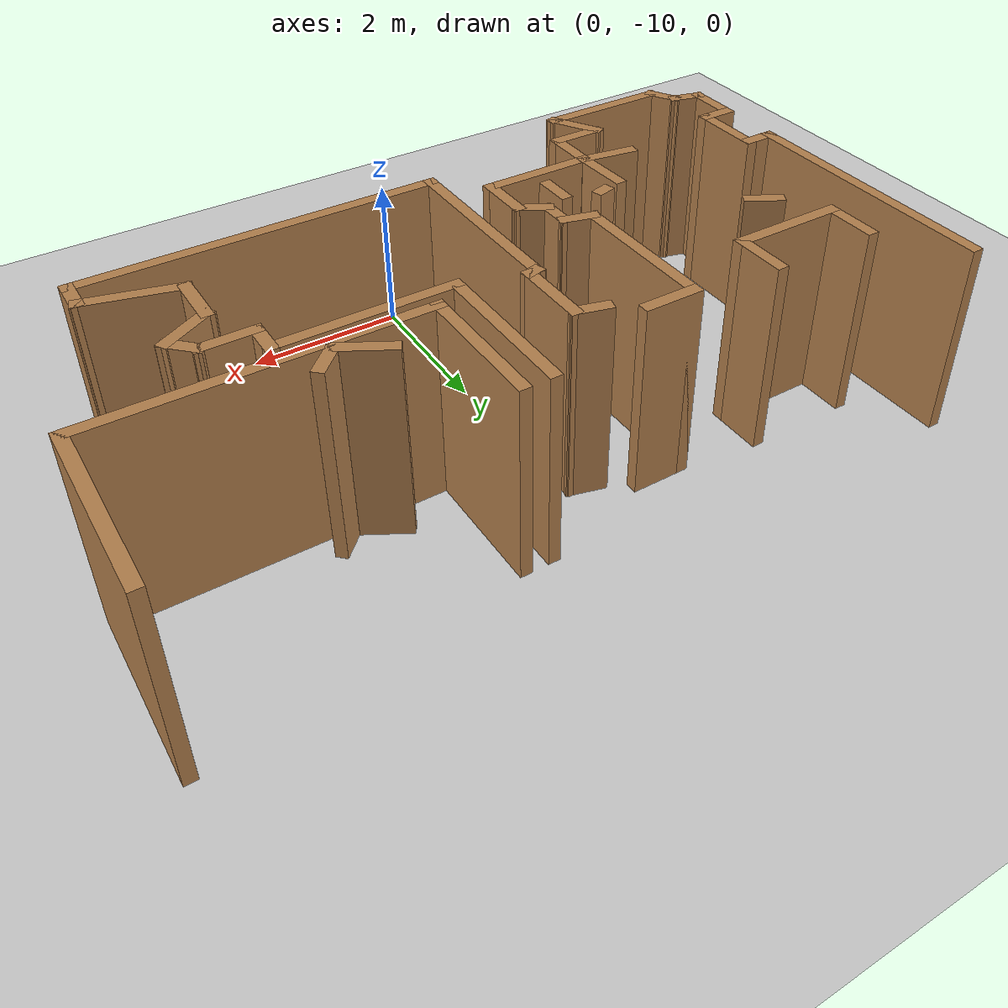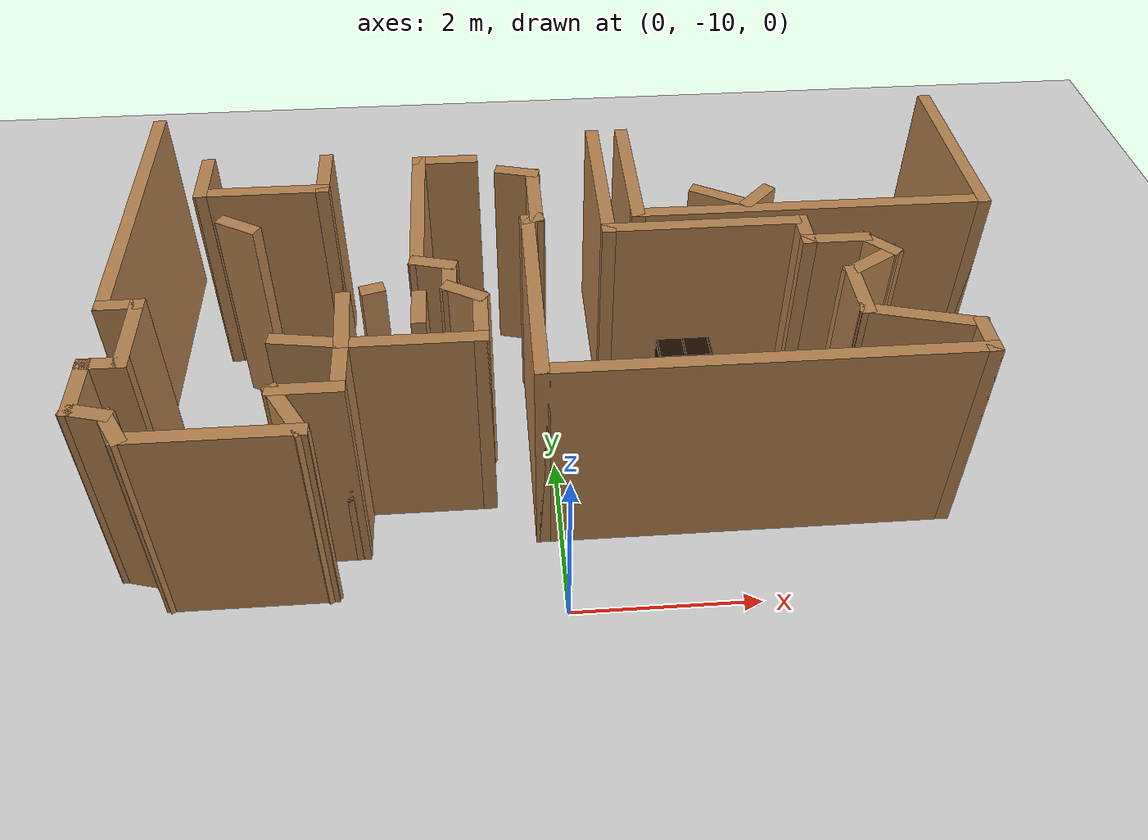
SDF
<sdf version="1.6">
 <world name="default">
  <model name="ground_plane">
   <static>1</static>
   <link name="link">
    <collision name="collision">
     <geometry><plane><normal>0 0 1</normal><size>100 100</size></plane></geometry>
     <surface>
      <contact><collide_bitmask>65535</collide_bitmask></contact>
      <friction><ode><mu>100</mu><mu2>50</mu2></ode></friction>
     </surface>
    </collision>
    <visual name="visual">
     <cast_shadows>0</cast_shadows>
     <geometry><plane><normal>0 0 1</normal><size>100 100</size></plane></geometry>
     <material>
      <script><uri>file://media/materials/scripts/gazebo.material</uri><name>Gazebo/Grey</name></script>
     </material>
    </visual>
   </link>
  </model>
  <model name="map_31">
   <pose>0.094706 -0.239588 0 0 -0 0</pose>
   <link name="Wall_148">
    <collision name="Wall_148_Collision">
     <geometry><box><size>0.796706 0.15 2.5</size></box></geometry>
     <pose>0 0 1.25 0 -0 0</pose>
    </collision>
    <visual name="Wall_148_Visual">
     <pose>0 0 1.25 0 -0 0</pose>
     <geometry><box><size>0.796706 0.15 2.5</size></box></geometry>
     <material>
      <script><uri>file://media/materials/scripts/gazebo.material</uri><name>Gazebo/Wood</name></script>
      <ambient>1 1 1 1</ambient>
     </material>
     <meta><layer>0</layer></meta>
    </visual>
    <pose>-2.51001 -8.20815 0 0 -0 -0.158782</pose>
   </link>
   <link name="Wall_150">
    <collision name="Wall_150_Collision">
     <geometry><box><size>0.833993 0.15 2.5</size></box></geometry>
     <pose>0 0 1.25 0 -0 0</pose>
    </collision>
    <visual name="Wall_150_Visual">
     <pose>0 0 1.25 0 -0 0</pose>
     <geometry><box><size>0.833993 0.15 2.5</size></box></geometry>
     <material>
      <script><uri>file://media/materials/scripts/gazebo.material</uri><name>Gazebo/Wood</name></script>
      <ambient>1 1 1 1</ambient>
     </material>
     <meta><layer>0</layer></meta>
    </visual>
    <pose>-2.20411 -7.91754 0 0 -0 -1.53165</pose>
   </link>
   <link name="Wall_152">
    <collision name="Wall_152_Collision">
     <geometry><box><size>0.5 0.15 2.5</size></box></geometry>
     <pose>0 0 1.25 0 -0 0</pose>
    </collision>
    <visual name="Wall_152_Visual">
     <pose>0 0 1.25 0 -0 0</pose>
     <geometry><box><size>0.5 0.15 2.5</size></box></geometry>
     <material>
      <script><uri>file://media/materials/scripts/gazebo.material</uri><name>Gazebo/Wood</name></script>
      <ambient>1 1 1 1</ambient>
     </material>
     <meta><layer>0</layer></meta>
    </visual>
    <pose>-1.45274 -7.7814 0 0 -0 -1.5708</pose>
   </link>
   <link name="Wall_154">
    <collision name="Wall_154_Collision">
     <geometry><box><size>0.25 0.15 2.5</size></box></geometry>
     <pose>0 0 1.25 0 -0 0</pose>
    </collision>
    <visual name="Wall_154_Visual">
     <pose>0 0 1.25 0 -0 0</pose>
     <geometry><box><size>0.25 0.15 2.5</size></box></geometry>
     <material>
      <script><uri>file://media/materials/scripts/gazebo.material</uri><name>Gazebo/Wood</name></script>
      <ambient>1 1 1 1</ambient>
     </material>
     <meta><layer>0</layer></meta>
    </visual>
    <pose>-1.92447 -7.4711 0 0 -0 0.261799</pose>
   </link>
   <link name="Wall_156">
    <collision name="Wall_156_Collision">
     <geometry><box><size>0.5 0.15 2.5</size></box></geometry>
     <pose>0 0 1.25 0 -0 0</pose>
    </collision>
    <visual name="Wall_156_Visual">
     <pose>0 0 1.25 0 -0 0</pose>
     <geometry><box><size>0.5 0.15 2.5</size></box></geometry>
     <material>
      <script><uri>file://media/materials/scripts/gazebo.material</uri><name>Gazebo/Wood</name></script>
      <ambient>1 1 1 1</ambient>
     </material>
     <meta><layer>0</layer></meta>
    </visual>
    <pose>-3.41191 -6.28675 0 0 -0 -0.523599</pose>
   </link>
   <link name="Wall_158">
    <collision name="Wall_158_Collision">
     <geometry><box><size>0.75 0.15 2.5</size></box></geometry>
     <pose>0 0 1.25 0 -0 0</pose>
    </collision>
    <visual name="Wall_158_Visual">
     <pose>0 0 1.25 0 -0 0</pose>
     <geometry><box><size>0.75 0.15 2.5</size></box></geometry>
     <material>
      <script><uri>file://media/materials/scripts/gazebo.material</uri><name>Gazebo/Wood</name></script>
      <ambient>1 1 1 1</ambient>
     </material>
     <meta><layer>0</layer></meta>
    </visual>
    <pose>-3.89995 -5.36741 0 0 -0 -1.5708</pose>
   </link>
   <link name="Wall_159">
    <collision name="Wall_159_Collision">
     <geometry><box><size>1.5 0.15 2.5</size></box></geometry>
     <pose>0 0 1.25 0 -0 0</pose>
    </collision>
    <visual name="Wall_159_Visual">
     <pose>0 0 1.25 0 -0 0</pose>
     <geometry><box><size>1.5 0.15 2.5</size></box></geometry>
     <material>
      <script><uri>file://media/materials/scripts/gazebo.material</uri><name>Gazebo/Wood</name></script>
      <ambient>1 1 1 1</ambient>
     </material>
     <meta><layer>0</layer></meta>
    </visual>
    <pose>-3.22495 -5.66741 0 0 -0 0</pose>
   </link>
   <link name="Wall_160">
    <collision name="Wall_160_Collision">
     <geometry><box><size>0.75 0.15 2.5</size></box></geometry>
     <pose>0 0 1.25 0 -0 0</pose>
    </collision>
    <visual name="Wall_160_Visual">
     <pose>0 0 1.25 0 -0 0</pose>
     <geometry><box><size>0.75 0.15 2.5</size></box></geometry>
     <material>
      <script><uri>file://media/materials/scripts/gazebo.material</uri><name>Gazebo/Wood</name></script>
      <ambient>1 1 1 1</ambient>
     </material>
     <meta><layer>0</layer></meta>
    </visual>
    <pose>-2.54996 -5.36741 0 0 -0 1.5708</pose>
   </link>
   <link name="Wall_165">
    <collision name="Wall_165_Collision">
     <geometry><box><size>0.75 0.15 2.5</size></box></geometry>
     <pose>0 0 1.25 0 -0 0</pose>
    </collision>
    <visual name="Wall_165_Visual">
     <pose>0 0 1.25 0 -0 0</pose>
     <geometry><box><size>0.75 0.15 2.5</size></box></geometry>
     <material>
      <script><uri>file://media/materials/scripts/gazebo.material</uri><name>Gazebo/Wood</name></script>
      <ambient>1 1 1 1</ambient>
     </material>
     <meta><layer>0</layer></meta>
    </visual>
    <pose>1.89668 -6.13512 0 0 -0 -0.523599</pose>
   </link>
   <link name="Wall_166">
    <collision name="Wall_166_Collision">
     <geometry><box><size>0.5 0.15 2.5</size></box></geometry>
     <pose>0 0 1.25 0 -0 0</pose>
    </collision>
    <visual name="Wall_166_Visual">
     <pose>0 0 1.25 0 -0 0</pose>
     <geometry><box><size>0.5 0.15 2.5</size></box></geometry>
     <material>
      <script><uri>file://media/materials/scripts/gazebo.material</uri><name>Gazebo/Wood</name></script>
      <ambient>1 1 1 1</ambient>
     </material>
     <meta><layer>0</layer></meta>
    </visual>
    <pose>2.28024 -6.16137 0 0 -0 0.785398</pose>
   </link>
   <link name="Wall_35">
    <collision name="Wall_35_Collision">
     <geometry><box><size>3.5 0.15 2.5</size></box></geometry>
     <pose>0 0 1.25 0 -0 0</pose>
    </collision>
    <visual name="Wall_35_Visual">
     <pose>0 0 1.25 0 -0 0</pose>
     <geometry><box><size>3.5 0.15 2.5</size></box></geometry>
     <material>
      <script><uri>file://media/materials/scripts/gazebo.material</uri><name>Gazebo/Wood</name></script>
      <ambient>1 1 1 1</ambient>
     </material>
     <meta><layer>0</layer></meta>
    </visual>
    <pose>-4.6038 -5.8602 0 0 -0 -1.5708</pose>
   </link>
   <link name="Wall_36">
    <collision name="Wall_36_Collision">
     <geometry><box><size>0.5 0.15 2.5</size></box></geometry>
     <pose>0 0 1.25 0 -0 0</pose>
    </collision>
    <visual name="Wall_36_Visual">
     <pose>0 0 1.25 0 -0 0</pose>
     <geometry><box><size>0.5 0.15 2.5</size></box></geometry>
     <material>
      <script><uri>file://media/materials/scripts/gazebo.material</uri><name>Gazebo/Wood</name></script>
      <ambient>1 1 1 1</ambient>
     </material>
     <meta><layer>0</layer></meta>
    </visual>
    <pose>-4.4288 -7.5352 0 0 -0 0</pose>
   </link>
   <link name="Wall_37">
    <collision name="Wall_37_Collision">
     <geometry><box><size>1 0.15 2.5</size></box></geometry>
     <pose>0 0 1.25 0 -0 0</pose>
    </collision>
    <visual name="Wall_37_Visual">
     <pose>0 0 1.25 0 -0 0</pose>
     <geometry><box><size>1 0.15 2.5</size></box></geometry>
     <material>
      <script><uri>file://media/materials/scripts/gazebo.material</uri><name>Gazebo/Wood</name></script>
      <ambient>1 1 1 1</ambient>
     </material>
     <meta><layer>0</layer></meta>
    </visual>
    <pose>-4.2538 -7.9602 0 0 -0 -1.5708</pose>
   </link>
   <link name="Wall_38">
    <collision name="Wall_38_Collision">
     <geometry><box><size>0.5 0.15 2.5</size></box></geometry>
     <pose>0 0 1.25 0 -0 0</pose>
    </collision>
    <visual name="Wall_38_Visual">
     <pose>0 0 1.25 0 -0 0</pose>
     <geometry><box><size>0.5 0.15 2.5</size></box></geometry>
     <material>
      <script><uri>file://media/materials/scripts/gazebo.material</uri><name>Gazebo/Wood</name></script>
      <ambient>1 1 1 1</ambient>
     </material>
     <meta><layer>0</layer></meta>
    </visual>
    <pose>-4.4288 -8.3852 0 0 -0 3.14159</pose>
   </link>
   <link name="Wall_39">
    <collision name="Wall_39_Collision">
     <geometry><box><size>0.75 0.15 2.5</size></box></geometry>
     <pose>0 0 1.25 0 -0 0</pose>
    </collision>
    <visual name="Wall_39_Visual">
     <pose>0 0 1.25 0 -0 0</pose>
     <geometry><box><size>0.75 0.15 2.5</size></box></geometry>
     <material>
      <script><uri>file://media/materials/scripts/gazebo.material</uri><name>Gazebo/Wood</name></script>
      <ambient>1 1 1 1</ambient>
     </material>
     <meta><layer>0</layer></meta>
    </visual>
    <pose>-4.6038 -8.6852 0 0 -0 -1.5708</pose>
   </link>
   <link name="Wall_40">
    <collision name="Wall_40_Collision">
     <geometry><box><size>0.5 0.15 2.5</size></box></geometry>
     <pose>0 0 1.25 0 -0 0</pose>
    </collision>
    <visual name="Wall_40_Visual">
     <pose>0 0 1.25 0 -0 0</pose>
     <geometry><box><size>0.5 0.15 2.5</size></box></geometry>
     <material>
      <script><uri>file://media/materials/scripts/gazebo.material</uri><name>Gazebo/Wood</name></script>
      <ambient>1 1 1 1</ambient>
     </material>
     <meta><layer>0</layer></meta>
    </visual>
    <pose>-4.43476 -9.03049 0 0 -0 -0.261799</pose>
   </link>
   <link name="Wall_41">
    <collision name="Wall_41_Collision">
     <geometry><box><size>0.5 0.15 2.5</size></box></geometry>
     <pose>0 0 1.25 0 -0 0</pose>
    </collision>
    <visual name="Wall_41_Visual">
     <pose>0 0 1.25 0 -0 0</pose>
     <geometry><box><size>0.5 0.15 2.5</size></box></geometry>
     <material>
      <script><uri>file://media/materials/scripts/gazebo.material</uri><name>Gazebo/Wood</name></script>
      <ambient>1 1 1 1</ambient>
     </material>
     <meta><layer>0</layer></meta>
    </visual>
    <pose>-4.17823 -9.22734 0 0 -0 -1.0472</pose>
   </link>
   <link name="Wall_42">
    <collision name="Wall_42_Collision">
     <geometry><box><size>1.75 0.15 2.5</size></box></geometry>
     <pose>0 0 1.25 0 -0 0</pose>
    </collision>
    <visual name="Wall_42_Visual">
     <pose>0 0 1.25 0 -0 0</pose>
     <geometry><box><size>1.75 0.15 2.5</size></box></geometry>
     <material>
      <script><uri>file://media/materials/scripts/gazebo.material</uri><name>Gazebo/Wood</name></script>
      <ambient>1 1 1 1</ambient>
     </material>
     <meta><layer>0</layer></meta>
    </visual>
    <pose>-3.29073 -9.37889 0 0 -0 0</pose>
   </link>
   <link name="Wall_43">
    <collision name="Wall_43_Collision">
     <geometry><box><size>0.75 0.15 2.5</size></box></geometry>
     <pose>0 0 1.25 0 -0 0</pose>
    </collision>
    <visual name="Wall_43_Visual">
     <pose>0 0 1.25 0 -0 0</pose>
     <geometry><box><size>0.75 0.15 2.5</size></box></geometry>
     <material>
      <script><uri>file://media/materials/scripts/gazebo.material</uri><name>Gazebo/Wood</name></script>
      <ambient>1 1 1 1</ambient>
     </material>
     <meta><layer>0</layer></meta>
    </visual>
    <pose>-2.64073 -9.11908 0 0 -0 2.0944</pose>
   </link>
   <link name="Wall_44">
    <collision name="Wall_44_Collision">
     <geometry><box><size>0.75 0.15 2.5</size></box></geometry>
     <pose>0 0 1.25 0 -0 0</pose>
    </collision>
    <visual name="Wall_44_Visual">
     <pose>0 0 1.25 0 -0 0</pose>
     <geometry><box><size>0.75 0.15 2.5</size></box></geometry>
     <material>
      <script><uri>file://media/materials/scripts/gazebo.material</uri><name>Gazebo/Wood</name></script>
      <ambient>1 1 1 1</ambient>
     </material>
     <meta><layer>0</layer></meta>
    </visual>
    <pose>-2.49072 -8.85928 0 0 -0 0</pose>
   </link>
   <link name="Wall_45">
    <collision name="Wall_45_Collision">
     <geometry><box><size>0.75 0.15 2.5</size></box></geometry>
     <pose>0 0 1.25 0 -0 0</pose>
    </collision>
    <visual name="Wall_45_Visual">
     <pose>0 0 1.25 0 -0 0</pose>
     <geometry><box><size>0.75 0.15 2.5</size></box></geometry>
     <material>
      <script><uri>file://media/materials/scripts/gazebo.material</uri><name>Gazebo/Wood</name></script>
      <ambient>1 1 1 1</ambient>
     </material>
     <meta><layer>0</layer></meta>
    </visual>
    <pose>-2.19073 -8.55928 0 0 -0 1.5708</pose>
   </link>
   <link name="Wall_46">
    <collision name="Wall_46_Collision">
     <geometry><box><size>1.5 0.15 2.5</size></box></geometry>
     <pose>0 0 1.25 0 -0 0</pose>
    </collision>
    <visual name="Wall_46_Visual">
     <pose>0 0 1.25 0 -0 0</pose>
     <geometry><box><size>1.5 0.15 2.5</size></box></geometry>
     <material>
      <script><uri>file://media/materials/scripts/gazebo.material</uri><name>Gazebo/Wood</name></script>
      <ambient>1 1 1 1</ambient>
     </material>
     <meta><layer>0</layer></meta>
    </visual>
    <pose>-1.51572 -8.25928 0 0 -0 0</pose>
   </link>
   <link name="Wall_47">
    <collision name="Wall_47_Collision">
     <geometry><box><size>0.75 0.15 2.5</size></box></geometry>
     <pose>0 0 1.25 0 -0 0</pose>
    </collision>
    <visual name="Wall_47_Visual">
     <pose>0 0 1.25 0 -0 0</pose>
     <geometry><box><size>0.75 0.15 2.5</size></box></geometry>
     <material>
      <script><uri>file://media/materials/scripts/gazebo.material</uri><name>Gazebo/Wood</name></script>
      <ambient>1 1 1 1</ambient>
     </material>
     <meta><layer>0</layer></meta>
    </visual>
    <pose>-0.840725 -7.95928 0 0 -0 1.5708</pose>
   </link>
   <link name="Wall_48">
    <collision name="Wall_48_Collision">
     <geometry><box><size>0.5 0.15 2.5</size></box></geometry>
     <pose>0 0 1.25 0 -0 0</pose>
    </collision>
    <visual name="Wall_48_Visual">
     <pose>0 0 1.25 0 -0 0</pose>
     <geometry><box><size>0.5 0.15 2.5</size></box></geometry>
     <material>
      <script><uri>file://media/materials/scripts/gazebo.material</uri><name>Gazebo/Wood</name></script>
      <ambient>1 1 1 1</ambient>
     </material>
     <meta><layer>0</layer></meta>
    </visual>
    <pose>-0.99228 -7.57178 0 0 -0 2.61799</pose>
   </link>
   <link name="Wall_50">
    <collision name="Wall_50_Collision">
     <geometry><box><size>0.5 0.15 2.5</size></box></geometry>
     <pose>0 0 1.25 0 -0 0</pose>
    </collision>
    <visual name="Wall_50_Visual">
     <pose>0 0 1.25 0 -0 0</pose>
     <geometry><box><size>0.5 0.15 2.5</size></box></geometry>
     <material>
      <script><uri>file://media/materials/scripts/gazebo.material</uri><name>Gazebo/Wood</name></script>
      <ambient>1 1 1 1</ambient>
     </material>
     <meta><layer>0</layer></meta>
    </visual>
    <pose>-1.14383 -7.30928 0 0 -0 1.5708</pose>
   </link>
   <link name="Wall_51">
    <collision name="Wall_51_Collision">
     <geometry><box><size>0.5 0.15 2.5</size></box></geometry>
     <pose>0 0 1.25 0 -0 0</pose>
    </collision>
    <visual name="Wall_51_Visual">
     <pose>0 0 1.25 0 -0 0</pose>
     <geometry><box><size>0.5 0.15 2.5</size></box></geometry>
     <material>
      <script><uri>file://media/materials/scripts/gazebo.material</uri><name>Gazebo/Wood</name></script>
      <ambient>1 1 1 1</ambient>
     </material>
     <meta><layer>0</layer></meta>
    </visual>
    <pose>-1.31287 -7.08898 0 0 -0 2.87979</pose>
   </link>
   <link name="Wall_52">
    <collision name="Wall_52_Collision">
     <geometry><box><size>2 0.15 2.5</size></box></geometry>
     <pose>0 0 1.25 0 -0 0</pose>
    </collision>
    <visual name="Wall_52_Visual">
     <pose>0 0 1.25 0 -0 0</pose>
     <geometry><box><size>2 0.15 2.5</size></box></geometry>
     <material>
      <script><uri>file://media/materials/scripts/gazebo.material</uri><name>Gazebo/Wood</name></script>
      <ambient>1 1 1 1</ambient>
     </material>
     <meta><layer>0</layer></meta>
    </visual>
    <pose>-1.48191 -6.11869 0 0 -0 1.5708</pose>
   </link>
   <link name="Wall_53">
    <collision name="Wall_53_Collision">
     <geometry><box><size>0.75 0.15 2.5</size></box></geometry>
     <pose>0 0 1.25 0 -0 0</pose>
    </collision>
    <visual name="Wall_53_Visual">
     <pose>0 0 1.25 0 -0 0</pose>
     <geometry><box><size>0.75 0.15 2.5</size></box></geometry>
     <material>
      <script><uri>file://media/materials/scripts/gazebo.material</uri><name>Gazebo/Wood</name></script>
      <ambient>1 1 1 1</ambient>
     </material>
     <meta><layer>0</layer></meta>
    </visual>
    <pose>-1.18191 -5.19369 0 0 -0 0</pose>
   </link>
   <link name="Wall_57">
    <collision name="Wall_57_Collision">
     <geometry><box><size>0.5 0.15 2.5</size></box></geometry>
     <pose>0 0 1.25 0 -0 0</pose>
    </collision>
    <visual name="Wall_57_Visual">
     <pose>0 0 1.25 0 -0 0</pose>
     <geometry><box><size>0.5 0.15 2.5</size></box></geometry>
     <material>
      <script><uri>file://media/materials/scripts/gazebo.material</uri><name>Gazebo/Wood</name></script>
      <ambient>1 1 1 1</ambient>
     </material>
     <meta><layer>0</layer></meta>
    </visual>
    <pose>-0.362871 -5.48898 0 0 -0 -0.261799</pose>
   </link>
   <link name="Wall_58">
    <collision name="Wall_58_Collision">
     <geometry><box><size>1 0.15 2.5</size></box></geometry>
     <pose>0 0 1.25 0 -0 0</pose>
    </collision>
    <visual name="Wall_58_Visual">
     <pose>0 0 1.25 0 -0 0</pose>
     <geometry><box><size>1 0.15 2.5</size></box></geometry>
     <material>
      <script><uri>file://media/materials/scripts/gazebo.material</uri><name>Gazebo/Wood</name></script>
      <ambient>1 1 1 1</ambient>
     </material>
     <meta><layer>0</layer></meta>
    </visual>
    <pose>-0.193834 -5.95928 0 0 -0 -1.5708</pose>
   </link>
   <link name="Wall_59">
    <collision name="Wall_59_Collision">
     <geometry><box><size>0.25 0.15 2.5</size></box></geometry>
     <pose>0 0 1.25 0 -0 0</pose>
    </collision>
    <visual name="Wall_59_Visual">
     <pose>0 0 1.25 0 -0 0</pose>
     <geometry><box><size>0.25 0.15 2.5</size></box></geometry>
     <material>
      <script><uri>file://media/materials/scripts/gazebo.material</uri><name>Gazebo/Wood</name></script>
      <ambient>1 1 1 1</ambient>
     </material>
     <meta><layer>0</layer></meta>
    </visual>
    <pose>-0.242131 -6.39722 0 0 -0 -2.87979</pose>
   </link>
   <link name="Wall_60">
    <collision name="Wall_60_Collision">
     <geometry><box><size>2.5 0.15 2.5</size></box></geometry>
     <pose>0 0 1.25 0 -0 0</pose>
    </collision>
    <visual name="Wall_60_Visual">
     <pose>0 0 1.25 0 -0 0</pose>
     <geometry><box><size>2.5 0.15 2.5</size></box></geometry>
     <material>
      <script><uri>file://media/materials/scripts/gazebo.material</uri><name>Gazebo/Wood</name></script>
      <ambient>1 1 1 1</ambient>
     </material>
     <meta><layer>0</layer></meta>
    </visual>
    <pose>-0.290427 -7.58516 0 0 -0 -1.5708</pose>
   </link>
   <link name="Wall_61">
    <collision name="Wall_61_Collision">
     <geometry><box><size>4.5 0.15 2.5</size></box></geometry>
     <pose>0 0 1.25 0 -0 0</pose>
    </collision>
    <visual name="Wall_61_Visual">
     <pose>0 0 1.25 0 -0 0</pose>
     <geometry><box><size>4.5 0.15 2.5</size></box></geometry>
     <material>
      <script><uri>file://media/materials/scripts/gazebo.material</uri><name>Gazebo/Wood</name></script>
      <ambient>1 1 1 1</ambient>
     </material>
     <meta><layer>0</layer></meta>
    </visual>
    <pose>1.88457 -8.76016 0 0 -0 0</pose>
   </link>
   <link name="Wall_62">
    <collision name="Wall_62_Collision">
     <geometry><box><size>0.5 0.15 2.5</size></box></geometry>
     <pose>0 0 1.25 0 -0 0</pose>
    </collision>
    <visual name="Wall_62_Visual">
     <pose>0 0 1.25 0 -0 0</pose>
     <geometry><box><size>0.5 0.15 2.5</size></box></geometry>
     <material>
      <script><uri>file://media/materials/scripts/gazebo.material</uri><name>Gazebo/Wood</name></script>
      <ambient>1 1 1 1</ambient>
     </material>
     <meta><layer>0</layer></meta>
    </visual>
    <pose>4.05957 -8.58516 0 0 -0 1.5708</pose>
   </link>
   <link name="Wall_63">
    <collision name="Wall_63_Collision">
     <geometry><box><size>1.25 0.15 2.5</size></box></geometry>
     <pose>0 0 1.25 0 -0 0</pose>
    </collision>
    <visual name="Wall_63_Visual">
     <pose>0 0 1.25 0 -0 0</pose>
     <geometry><box><size>1.25 0.15 2.5</size></box></geometry>
     <material>
      <script><uri>file://media/materials/scripts/gazebo.material</uri><name>Gazebo/Wood</name></script>
      <ambient>1 1 1 1</ambient>
     </material>
     <meta><layer>0</layer></meta>
    </visual>
    <pose>3.52831 -8.26781 0 0 -0 2.87979</pose>
   </link>
   <link name="Wall_64">
    <collision name="Wall_64_Collision">
     <geometry><box><size>0.75 0.15 2.5</size></box></geometry>
     <pose>0 0 1.25 0 -0 0</pose>
    </collision>
    <visual name="Wall_64_Visual">
     <pose>0 0 1.25 0 -0 0</pose>
     <geometry><box><size>0.75 0.15 2.5</size></box></geometry>
     <material>
      <script><uri>file://media/materials/scripts/gazebo.material</uri><name>Gazebo/Wood</name></script>
      <ambient>1 1 1 1</ambient>
     </material>
     <meta><layer>0</layer></meta>
    </visual>
    <pose>2.99706 -7.82546 0 0 -0 1.5708</pose>
   </link>
   <link name="Wall_65">
    <collision name="Wall_65_Collision">
     <geometry><box><size>0.75 0.15 2.5</size></box></geometry>
     <pose>0 0 1.25 0 -0 0</pose>
    </collision>
    <visual name="Wall_65_Visual">
     <pose>0 0 1.25 0 -0 0</pose>
     <geometry><box><size>0.75 0.15 2.5</size></box></geometry>
     <material>
      <script><uri>file://media/materials/scripts/gazebo.material</uri><name>Gazebo/Wood</name></script>
      <ambient>1 1 1 1</ambient>
     </material>
     <meta><layer>0</layer></meta>
    </visual>
    <pose>3.25686 -7.37546 0 0 -0 0.523599</pose>
   </link>
   <link name="Wall_66">
    <collision name="Wall_66_Collision">
     <geometry><box><size>0.5 0.15 2.5</size></box></geometry>
     <pose>0 0 1.25 0 -0 0</pose>
    </collision>
    <visual name="Wall_66_Visual">
     <pose>0 0 1.25 0 -0 0</pose>
     <geometry><box><size>0.5 0.15 2.5</size></box></geometry>
     <material>
      <script><uri>file://media/materials/scripts/gazebo.material</uri><name>Gazebo/Wood</name></script>
      <ambient>1 1 1 1</ambient>
     </material>
     <meta><layer>0</layer></meta>
    </visual>
    <pose>3.39293 -7.10171 0 0 -0 2.35619</pose>
   </link>
   <link name="Wall_67">
    <collision name="Wall_67_Collision">
     <geometry><box><size>0.75 0.15 2.5</size></box></geometry>
     <pose>0 0 1.25 0 -0 0</pose>
    </collision>
    <visual name="Wall_67_Visual">
     <pose>0 0 1.25 0 -0 0</pose>
     <geometry><box><size>0.75 0.15 2.5</size></box></geometry>
     <material>
      <script><uri>file://media/materials/scripts/gazebo.material</uri><name>Gazebo/Wood</name></script>
      <ambient>1 1 1 1</ambient>
     </material>
     <meta><layer>0</layer></meta>
    </visual>
    <pose>2.96918 -6.97797 0 0 -0 3.14159</pose>
   </link>
   <link name="Wall_70">
    <collision name="Wall_70_Collision">
     <geometry><box><size>0.5 0.15 2.5</size></box></geometry>
     <pose>0 0 1.25 0 -0 0</pose>
    </collision>
    <visual name="Wall_70_Visual">
     <pose>0 0 1.25 0 -0 0</pose>
     <geometry><box><size>0.5 0.15 2.5</size></box></geometry>
     <material>
      <script><uri>file://media/materials/scripts/gazebo.material</uri><name>Gazebo/Wood</name></script>
      <ambient>1 1 1 1</ambient>
     </material>
     <meta><layer>0</layer></meta>
    </visual>
    <pose>2.66918 -6.80297 0 0 -0 1.5708</pose>
   </link>
   <link name="Wall_71">
    <collision name="Wall_71_Collision">
     <geometry><box><size>2.25 0.15 2.5</size></box></geometry>
     <pose>0 0 1.25 0 -0 0</pose>
    </collision>
    <visual name="Wall_71_Visual">
     <pose>0 0 1.25 0 -0 0</pose>
     <geometry><box><size>2.25 0.15 2.5</size></box></geometry>
     <material>
      <script><uri>file://media/materials/scripts/gazebo.material</uri><name>Gazebo/Wood</name></script>
      <ambient>1 1 1 1</ambient>
     </material>
     <meta><layer>0</layer></meta>
    </visual>
    <pose>1.61918 -6.62797 0 0 -0 3.14159</pose>
   </link>
   <link name="Wall_72">
    <collision name="Wall_72_Collision">
     <geometry><box><size>2 0.15 2.5</size></box></geometry>
     <pose>0 0 1.25 0 -0 0</pose>
    </collision>
    <visual name="Wall_72_Visual">
     <pose>0 0 1.25 0 -0 0</pose>
     <geometry><box><size>2 0.15 2.5</size></box></geometry>
     <material>
      <script><uri>file://media/materials/scripts/gazebo.material</uri><name>Gazebo/Wood</name></script>
      <ambient>1 1 1 1</ambient>
     </material>
     <meta><layer>0</layer></meta>
    </visual>
    <pose>0.569183 -5.70297 0 0 -0 1.5708</pose>
   </link>
   <link name="Wall_74">
    <collision name="Wall_74_Collision">
     <geometry><box><size>1.75 0.15 2.5</size></box></geometry>
     <pose>0 0 1.25 0 -0 0</pose>
    </collision>
    <visual name="Wall_74_Visual">
     <pose>0 0 1.25 0 -0 0</pose>
     <geometry><box><size>1.75 0.15 2.5</size></box></geometry>
     <material>
      <script><uri>file://media/materials/scripts/gazebo.material</uri><name>Gazebo/Wood</name></script>
      <ambient>1 1 1 1</ambient>
     </material>
     <meta><layer>0</layer></meta>
    </visual>
    <pose>0.919183 -5.57797 0 0 -0 -1.5708</pose>
   </link>
   <link name="Wall_75">
    <collision name="Wall_75_Collision">
     <geometry><box><size>4 0.15 2.5</size></box></geometry>
     <pose>0 0 1.25 0 -0 0</pose>
    </collision>
    <visual name="Wall_75_Visual">
     <pose>0 0 1.25 0 -0 0</pose>
     <geometry><box><size>4 0.15 2.5</size></box></geometry>
     <material>
      <script><uri>file://media/materials/scripts/gazebo.material</uri><name>Gazebo/Wood</name></script>
      <ambient>1 1 1 1</ambient>
     </material>
     <meta><layer>0</layer></meta>
    </visual>
    <pose>2.84418 -6.37797 0 0 -0 0</pose>
   </link>
   <link name="Wall_76">
    <collision name="Wall_76_Collision">
     <geometry><box><size>2.25 0.15 2.5</size></box></geometry>
     <pose>0 0 1.25 0 -0 0</pose>
    </collision>
    <visual name="Wall_76_Visual">
     <pose>0 0 1.25 0 -0 0</pose>
     <geometry><box><size>2.25 0.15 2.5</size></box></geometry>
     <material>
      <script><uri>file://media/materials/scripts/gazebo.material</uri><name>Gazebo/Wood</name></script>
      <ambient>1 1 1 1</ambient>
     </material>
     <meta><layer>0</layer></meta>
    </visual>
    <pose>4.76918 -5.32797 0 0 -0 1.5708</pose>
   </link>
   <static>1</static>
  </model>
  <model name="6_Cube_StorageE">
   <link name="Wall_0">
    <pose>0 0 0.01 0 -0 0</pose>
    <inertial>
     <mass>1.6201</mass>
     <inertia><ixx>0.0119</ixx><iyy>0.0631</iyy><izz>0.0513</izz><ixy>0</ixy><ixz>0</ixz><iyz>0</iyz></inertia>
    </inertial>
    <collision name="Wall_0_Collision"><geometry><box><size>0.616 0.296 0.02</size></box></geometry></collision>
    <visual name="Wall_0_Visual">
     <geometry><box><size>0.616 0.296 0.02</size></box></geometry>
     <material>
      <script><uri>file://media/materials/scripts/gazebo.material</uri><name>Gazebo/Grey</name></script>
      <ambient>0.105882 0.0509804 0 1</ambient>
     </material>
    </visual>
   </link>
   <joint name="0_2" type="fixed">
    <pose>-0.308 0 0 0 -0 0</pose>
    <parent>Wall_2</parent>
    <child>Wall_0</child>
    <axis>
     <xyz>1 0 0</xyz>
     <use_parent_model_frame>0</use_parent_model_frame>
     <limit><lower>-1e+16</lower><upper>1e+16</upper></limit>
    </axis>
   </joint>
   <joint name="0_12" type="fixed">
    <parent>Wall_12</parent>
    <child>Wall_0</child>
    <axis>
     <xyz>0 0 1</xyz>
     <use_parent_model_frame>0</use_parent_model_frame>
     <limit><lower>-1e+16</lower><upper>1e+16</upper></limit>
    </axis>
   </joint>
   <joint name="0_4" type="fixed">
    <pose>0.308 0 0 0 -0 0</pose>
    <parent>Wall_4</parent>
    <child>Wall_0</child>
    <axis>
     <xyz>1 0 0</xyz>
     <use_parent_model_frame>0</use_parent_model_frame>
     <limit><lower>-1e+16</lower><upper>1e+16</upper></limit>
    </axis>
   </joint>
   <link name="Wall_10">
    <pose>0 0 0.61 0 -0 0</pose>
    <inertial>
     <mass>1.6201</mass>
     <inertia><ixx>0.0119</ixx><iyy>0.0631</iyy><izz>0.0513</izz><ixy>0</ixy><ixz>0</ixz><iyz>0</iyz></inertia>
    </inertial>
    <collision name="Wall_10_Collision"><geometry><box><size>0.616 0.296 0.02</size></box></geometry></collision>
    <visual name="Wall_10_Visual">
     <geometry><box><size>0.616 0.296 0.02</size></box></geometry>
     <material>
      <script><uri>file://media/materials/scripts/gazebo.material</uri><name>Gazebo/Grey</name></script>
      <ambient>0.105882 0.0509804 0 1</ambient>
     </material>
    </visual>
   </link>
   <joint name="10_2" type="fixed">
    <pose>-0.308 0 0 0 -0 0</pose>
    <parent>Wall_2</parent>
    <child>Wall_10</child>
    <axis>
     <xyz>1 0 0</xyz>
     <use_parent_model_frame>0</use_parent_model_frame>
     <limit><lower>-1e+16</lower><upper>1e+16</upper></limit>
    </axis>
   </joint>
   <joint name="10_12" type="fixed">
    <parent>Wall_12</parent>
    <child>Wall_10</child>
    <axis>
     <xyz>0 0 1</xyz>
     <use_parent_model_frame>0</use_parent_model_frame>
     <limit><lower>-1e+16</lower><upper>1e+16</upper></limit>
    </axis>
   </joint>
   <joint name="10_4" type="fixed">
    <pose>0.308 0 0 0 -0 0</pose>
    <parent>Wall_4</parent>
    <child>Wall_10</child>
    <axis>
     <xyz>1 0 0</xyz>
     <use_parent_model_frame>0</use_parent_model_frame>
     <limit><lower>-1e+16</lower><upper>1e+16</upper></limit>
    </axis>
   </joint>
   <link name="Wall_12">
    <pose>0 0 0.4575 0 -0 0</pose>
    <inertial>
     <mass>2.4065</mass>
     <inertia><ixx>0.0177</ixx><iyy>0.1855</iyy><izz>0.168</izz><ixy>0</ixy><ixz>0</ixz><iyz>0</iyz></inertia>
    </inertial>
    <collision name="Wall_12_Collision"><geometry><box><size>0.02 0.296 0.915</size></box></geometry></collision>
    <visual name="Wall_12_Visual">
     <geometry><box><size>0.02 0.296 0.915</size></box></geometry>
     <material>
      <script><uri>file://media/materials/scripts/gazebo.material</uri><name>Gazebo/Grey</name></script>
      <ambient>0.105882 0.0509804 0 1</ambient>
     </material>
    </visual>
   </link>
   <link name="Wall_2">
    <pose>-0.298 0 0.4575 0 -0 0</pose>
    <inertial>
     <mass>2.4065</mass>
     <inertia><ixx>0.0177</ixx><iyy>0.1855</iyy><izz>0.168</izz><ixy>0</ixy><ixz>0</ixz><iyz>0</iyz></inertia>
    </inertial>
    <collision name="Wall_2_Collision"><geometry><box><size>0.02 0.296 0.915</size></box></geometry></collision>
    <visual name="Wall_2_Visual">
     <geometry><box><size>0.02 0.296 0.915</size></box></geometry>
     <material>
      <script><uri>file://media/materials/scripts/gazebo.material</uri><name>Gazebo/Grey</name></script>
      <ambient>0.105882 0.0509804 0 1</ambient>
     </material>
    </visual>
   </link>
   <link name="Wall_4">
    <pose>0.298 0 0.4575 0 -0 0</pose>
    <inertial>
     <mass>2.4065</mass>
     <inertia><ixx>0.0177</ixx><iyy>0.1855</iyy><izz>0.168</izz><ixy>0</ixy><ixz>0</ixz><iyz>0</iyz></inertia>
    </inertial>
    <collision name="Wall_4_Collision"><geometry><box><size>0.02 0.296 0.915</size></box></geometry></collision>
    <visual name="Wall_4_Visual">
     <geometry><box><size>0.02 0.296 0.915</size></box></geometry>
     <material>
      <script><uri>file://media/materials/scripts/gazebo.material</uri><name>Gazebo/Grey</name></script>
      <ambient>0.105882 0.0509804 0 1</ambient>
     </material>
    </visual>
   </link>
   <link name="Wall_6">
    <pose>0 0 0.905 0 -0 0</pose>
    <inertial>
     <mass>1.6201</mass>
     <inertia><ixx>0.0119</ixx><iyy>0.0631</iyy><izz>0.0513</izz><ixy>0</ixy><ixz>0</ixz><iyz>0</iyz></inertia>
    </inertial>
    <collision name="Wall_6_Collision"><geometry><box><size>0.616 0.296 0.02</size></box></geometry></collision>
    <visual name="Wall_6_Visual">
     <geometry><box><size>0.616 0.296 0.02</size></box></geometry>
     <material>
      <script><uri>file://media/materials/scripts/gazebo.material</uri><name>Gazebo/Grey</name></script>
      <ambient>0.105882 0.0509804 0 1</ambient>
     </material>
    </visual>
   </link>
   <joint name="6_2" type="fixed">
    <pose>-0.308 0 0 0 -0 0</pose>
    <parent>Wall_2</parent>
    <child>Wall_6</child>
    <axis>
     <xyz>2 0 0</xyz>
     <use_parent_model_frame>0</use_parent_model_frame>
     <limit><lower>-1e+16</lower><upper>1e+16</upper></limit>
    </axis>
   </joint>
   <joint name="6_12" type="fixed">
    <parent>Wall_12</parent>
    <child>Wall_6</child>
    <axis>
     <xyz>0 0 1</xyz>
     <use_parent_model_frame>0</use_parent_model_frame>
     <limit><lower>-1e+16</lower><upper>1e+16</upper></limit>
    </axis>
   </joint>
   <joint name="6_4" type="fixed">
    <pose>0.308 0 0 0 -0 0</pose>
    <parent>Wall_4</parent>
    <child>Wall_6</child>
    <axis>
     <xyz>1 0 0</xyz>
     <use_parent_model_frame>0</use_parent_model_frame>
     <limit><lower>-1e+16</lower><upper>1e+16</upper></limit>
    </axis>
   </joint>
   <link name="Wall_8">
    <pose>0 0 0.305 0 -0 0</pose>
    <inertial>
     <mass>1.6201</mass>
     <inertia><ixx>0.0119</ixx><iyy>0.0631</iyy><izz>0.0513</izz><ixy>0</ixy><ixz>0</ixz><iyz>0</iyz></inertia>
    </inertial>
    <collision name="Wall_8_Collision"><geometry><box><size>0.616 0.296 0.02</size></box></geometry></collision>
    <visual name="Wall_8_Visual">
     <geometry><box><size>0.616 0.296 0.02</size></box></geometry>
     <material>
      <script><uri>file://media/materials/scripts/gazebo.material</uri><name>Gazebo/Grey</name></script>
      <ambient>0.105882 0.0509804 0 1</ambient>
     </material>
    </visual>
   </link>
   <joint name="8_2" type="fixed">
    <pose>-0.308 0 0 0 -0 0</pose>
    <parent>Wall_2</parent>
    <child>Wall_8</child>
    <axis>
     <xyz>1 0 0</xyz>
     <use_parent_model_frame>0</use_parent_model_frame>
     <limit><lower>-1e+16</lower><upper>1e+16</upper></limit>
    </axis>
   </joint>
   <joint name="8_12" type="fixed">
    <parent>Wall_12</parent>
    <child>Wall_8</child>
    <axis>
     <xyz>0 0 1</xyz>
     <use_parent_model_frame>0</use_parent_model_frame>
     <limit><lower>-1e+16</lower><upper>1e+16</upper></limit>
    </axis>
   </joint>
   <joint name="8_4" type="fixed">
    <pose>0.308 0 0 0 -0 0</pose>
    <parent>Wall_4</parent>
    <child>Wall_8</child>
    <axis>
     <xyz>1 0 0</xyz>
     <use_parent_model_frame>0</use_parent_model_frame>
     <limit><lower>-1e+16</lower><upper>1e+16</upper></limit>
    </axis>
   </joint>
   <static>1</static>
   <pose>1.56079 -7.10083 0 0 -0 0</pose>
  </model>
 </world>
</sdf>
